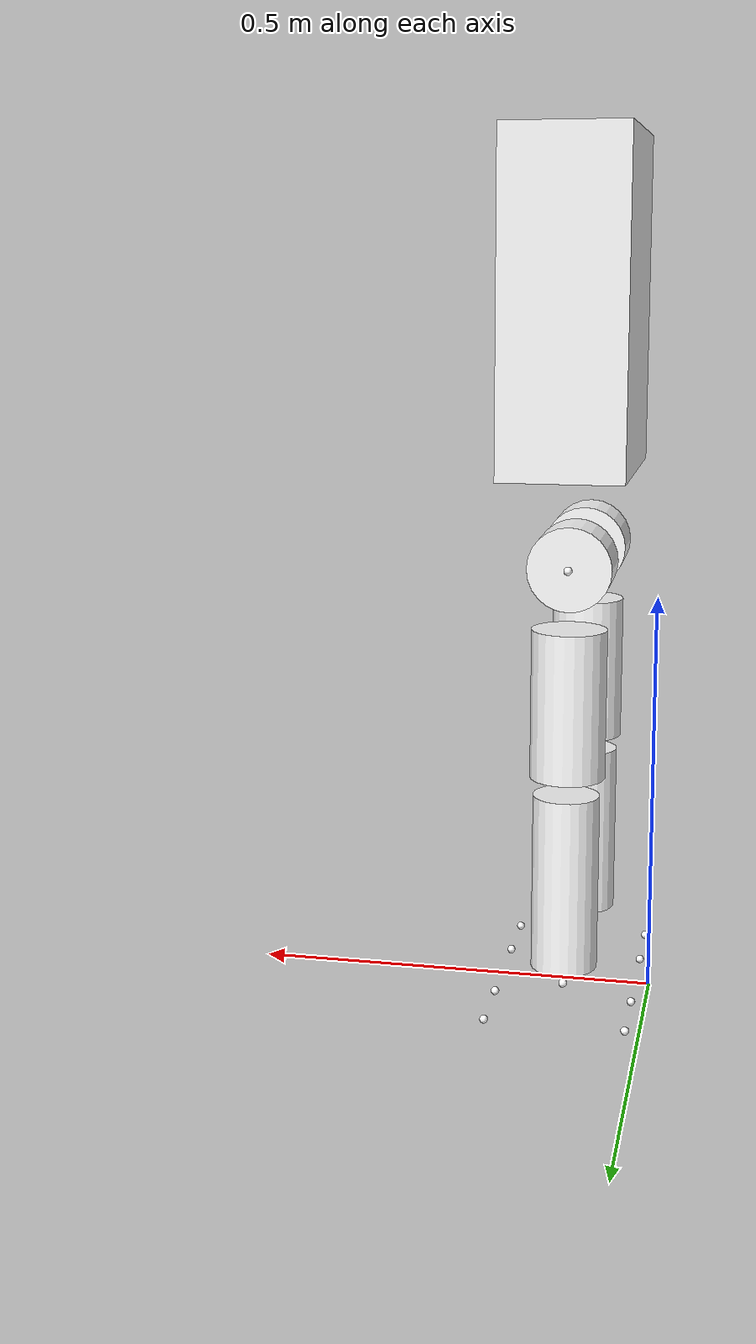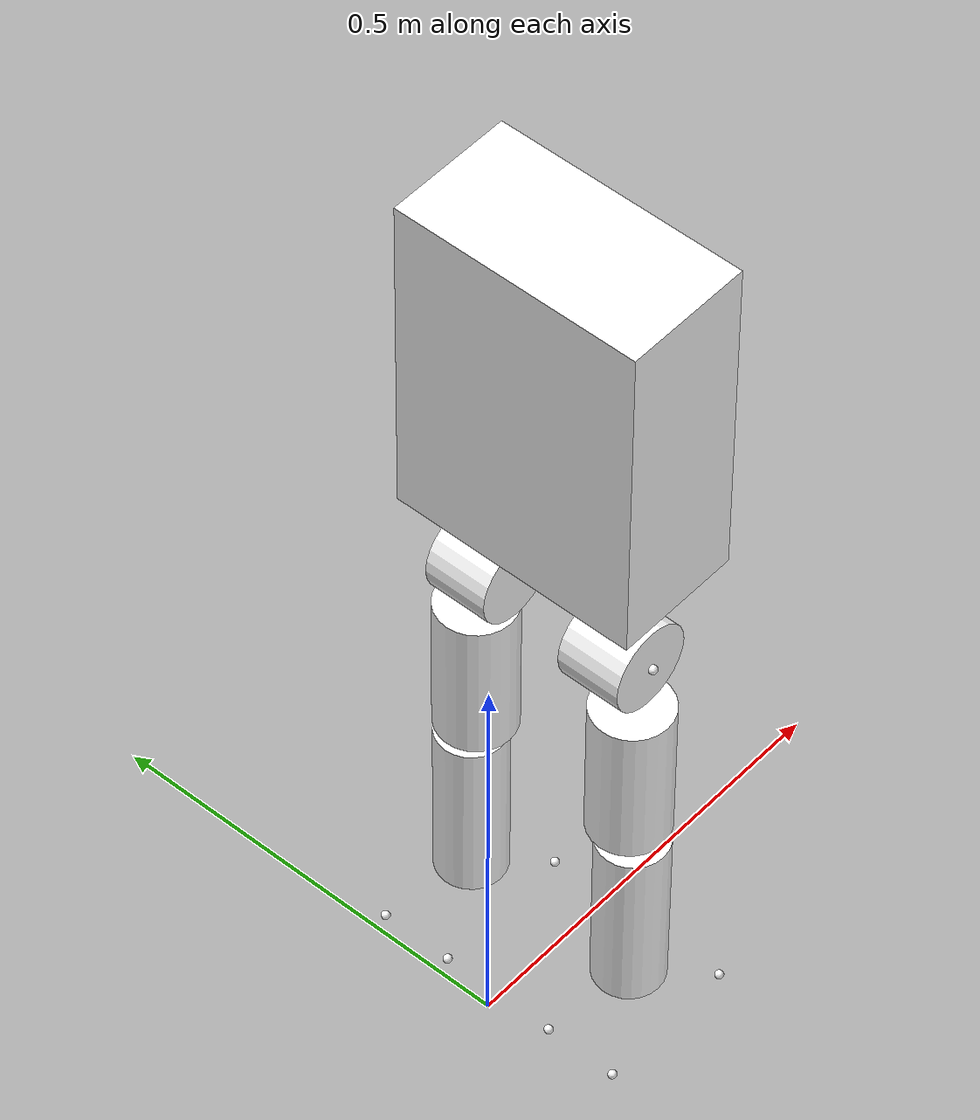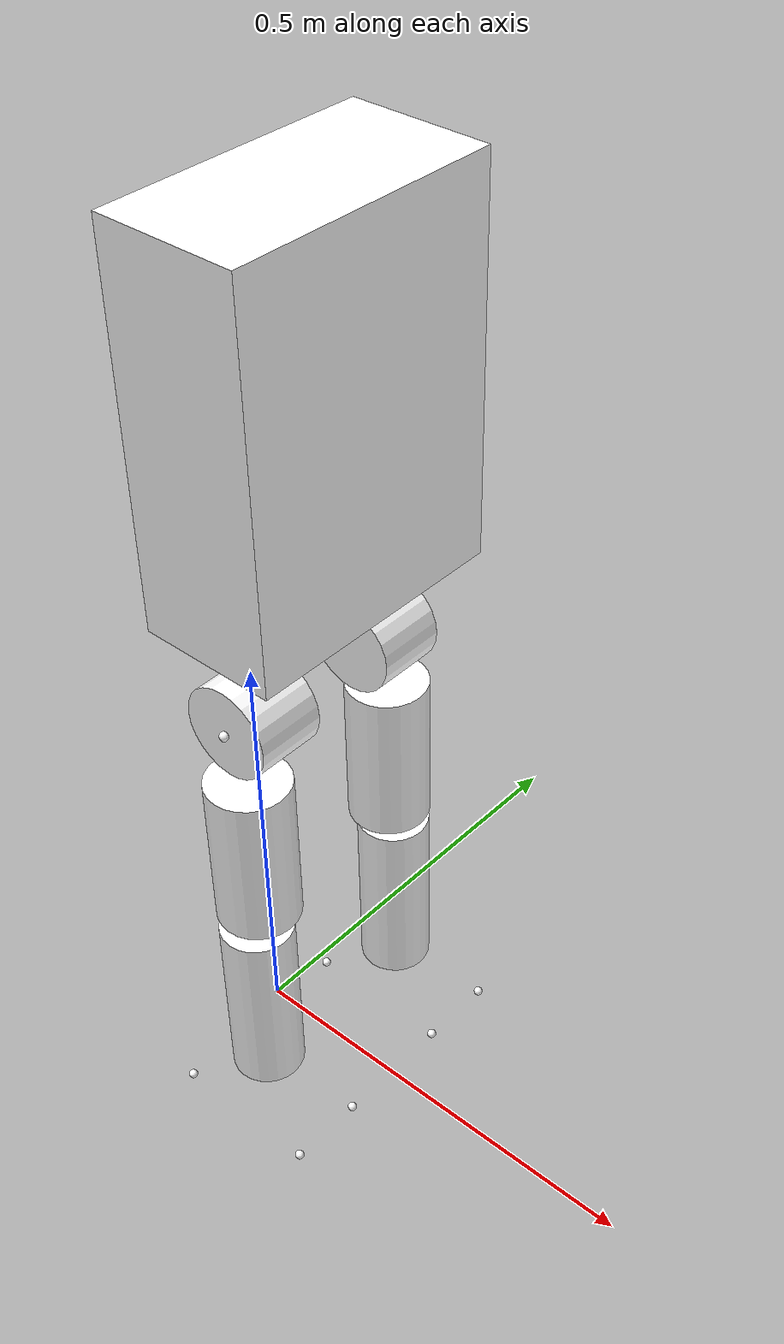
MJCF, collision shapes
<mujoco model="p1">
  <compiler angle="radian" meshdir="assets" autolimits="true"/>

  <default>
    <default class="p1">
      <default class="visual">
        <geom type="mesh" density="0" material="white" contype="0" conaffinity="0" group="2"/>
      </default>
      <default class="collision">
        <geom priority="1" condim="1" rgba="1 1 1 1" group="3"/>
        <default class="foot_collision">
          <geom type="sphere" size="0.005" priority="1" condim="3"/>
        </default>
      </default>
      <site rgba="1 1 1 1" group="5"/>
    </default>
  </default>

  <asset>
    <material name="white" rgba="1 1 1 1"/>
    <mesh name="pelvis_link" file="pelvis_link.STL"/>
    <mesh name="hip_roll_l_link" file="hip_roll_l_link.STL"/>
    <mesh name="hip_pitch_l_link" file="hip_pitch_l_link.STL"/>
    <mesh name="hip_yaw_l_link" file="hip_yaw_l_link.STL"/>
    <mesh name="knee_pitch_l_link" file="knee_pitch_l_link.STL"/>
    <mesh name="ankle_pitch_l_link" file="ankle_pitch_l_link.STL"/>
    <mesh name="ankle_roll_l_link" file="ankle_roll_l_link.STL"/>
    <mesh name="hip_roll_r_link" file="hip_roll_r_link.STL"/>
    <mesh name="hip_pitch_r_link" file="hip_pitch_r_link.STL"/>
    <mesh name="hip_yaw_r_link" file="hip_yaw_r_link.STL"/>
    <mesh name="knee_pitch_r_link" file="knee_pitch_r_link.STL"/>
    <mesh name="ankle_pitch_r_link" file="ankle_pitch_r_link.STL"/>
    <mesh name="ankle_roll_r_link" file="ankle_roll_r_link.STL"/>
  </asset>

  <worldbody>
    <body name="pelvis_link" pos="0 0 0.65454" childclass="p1">
      <light pos="0 0 2" mode="trackcom"/>
      <camera name="tracking" pos="1.5 -1.5 0.6" xyaxes="0.707 0.707 0 -0.276 0.276 0.921" mode="trackcom"/>
      <freejoint name="floating_base_joint"/>
      <inertial pos="0.08578338 0.00244448 0.08884186" mass="15.22825973"
        fullinertia="0.35831058 0.29113656 0.13960516 -0.00120621 -0.0601778 -0.01413169"/>
      <geom class="visual" mesh="pelvis_link"/>
      <geom name="pelvis_collision" class="collision" type="box"
        size="0.075 0.145 0.2" pos="0.105 0 0.2"/>
      <site name="imu_in_pelvis" type="box" size="0.01 0.01 0.005" pos="0 0 0"/>

      <body name="hip_roll_l_link" pos="0.03002 0.09 -0.0648"
        quat="0.9659258 0 0.258819 0">
        <inertial pos="0.06875776 0.02075955 0.00008271" mass="1.84357373"
          fullinertia="0.00057268 0.00139778 0.00123139 -0.00014980 -0.00000196 0.00000037"/>
        <joint name="hip_roll_l_joint" axis="1 0 0" range="-0.6 0.6"/>
        <geom class="visual" mesh="hip_roll_l_link"/>
        <geom name="hip_roll_l_collision" class="collision" type="cylinder"
          size="0.05 0.0375" pos="0.075 -0.005 0" quat="0.7071068 0.7071068 0 0"/>

        <body name="hip_pitch_l_link" pos="0.076 0.035 0"
          quat="0.9659258 0 -0.258819 0">
          <inertial pos="0 -0.00443165 -0.03247590" mass="0.30277611"
            fullinertia="0.00040026 0.00037069 0.00020693 0 0 -0.00011064"/>
          <joint name="hip_pitch_l_joint" axis="0 1 0" range="-1.0 0.5"/>
          <geom class="visual" mesh="hip_pitch_l_link"/>
          <geom name="hip_pitch_l_collision" class="collision" type="sphere" size="0.005"/>

          <body name="hip_yaw_l_link" pos="0 -0.024 -0.063">
            <inertial pos="-0.00004624 0.00328905 -0.08825309" mass="2.43873932"
              fullinertia="0.00875946 0.00881621 0.00272891 0.00000599 -0.00000620 0.00042315"/>
            <joint name="hip_yaw_l_joint" axis="0 0 1" range="-0.5 0.5"/>
            <geom class="visual" mesh="hip_yaw_l_link"/>
            <geom name="hip_yaw_l_collision" class="collision" type="cylinder"
              size="0.045 0.09" pos="0 0 -0.1"/>

            <body name="knee_pitch_l_link" pos="0 -0.019 -0.143">
              <inertial pos="-0.00095980 0.02645615 -0.14467802" mass="1.60133571"
                fullinertia="0.00873696 0.00918928 0.00166316 -0.00003028 -0.00089958 0.00076163"/>
              <joint name="knee_pitch_l_joint" axis="0 1 0" range="0 1.8"/>
              <geom class="visual" mesh="knee_pitch_l_link"/>
              <geom name="knee_pitch_l_collision" class="collision" type="cylinder"
                size="0.04 0.1075" pos="0 0.025 -0.175"/>

              <body name="ankle_pitch_l_link" pos="0 0.0301 -0.30494">
                <inertial pos="0 0 0" mass="0.07771556"
                  fullinertia="0.00000946 0.00000637 0.0000138 0 0 0"/>
                <joint name="ankle_pitch_l_joint" axis="0 1 0" range="-0.6 0.4"/>
                <geom class="visual" mesh="ankle_pitch_l_link"/>
                <geom name="ankle_pitch_l_collision" class="collision"
                  type="sphere" size="0.005"/>

                <body name="ankle_roll_l_link" pos="-0.015 0 0">
                  <inertial pos="0.01881405 0.00000220 -0.02511955" mass="0.62856577"
                    fullinertia="0.00065175 0.00173476 0.00225362 -0.00000008 0.00000714 0"/>
                  <joint name="ankle_roll_l_joint" axis="1 0 0" range="-0.2 0.2"/>
                  <geom class="visual" mesh="ankle_roll_l_link"/>
                  <site name="left_foot" size="0.01" pos="0.02 0 -0.0408"/>
                  <geom name="left_foot1_collision" class="foot_collision" pos="-0.065 0.043 -0.0358"/>
                  <geom name="left_foot2_collision" class="foot_collision" pos="-0.065 -0.043 -0.0358"/>
                  <geom name="left_foot3_collision" class="foot_collision" pos="0.105 0.043 -0.0358"/>
                  <geom name="left_foot4_collision" class="foot_collision" pos="0.105 -0.043 -0.0358"/>
                </body>
              </body>
            </body>
          </body>
        </body>
      </body>

      <body name="hip_roll_r_link" pos="0.0302 -0.09 -0.0648"
        quat="0.9659258 0 0.258819 0">
        <inertial pos="0.0603906 -0.02075955 0.00008270" mass="1.84357373"
          fullinertia="0.00057268 0.00134505 0.00117867 0.00015166 -0.00000051 -0.00000037"/>
        <joint name="hip_roll_r_joint" axis="1 0 0" range="-0.6 0.6"/>
        <geom class="visual" mesh="hip_roll_r_link"/>
        <geom name="hip_roll_r_collision" class="collision" type="cylinder"
          size="0.05 0.0375" pos="0.075 0.005 0" quat="0.7071068 0.7071068 0 0"/>

        <body name="hip_pitch_r_link" pos="0.076 -0.035 0"
          quat="0.9659258 0 -0.258819 0">
          <inertial pos="0 0.00443165 -0.03247590" mass="0.30277611"
            fullinertia="0.00040026 0.00037069 0.00020693 0 0 0.00011064"/>
          <joint name="hip_pitch_r_joint" axis="0 1 0" range="-1.0 0.5"/>
          <geom class="visual" mesh="hip_pitch_r_link"/>
          <geom name="hip_pitch_r_collision" class="collision" type="sphere" size="0.005"/>

          <body name="hip_yaw_r_link" pos="0 0.024 -0.063">
            <inertial pos="0 -0.00315274 -0.08823981" mass="2.43873932"
              fullinertia="0.00875833 0.00881266 0.00273078 0.00000230 -0.00000065 -0.00042669"/>
            <joint name="hip_yaw_r_joint" axis="0 0 1" range="-0.5 0.5"/>
            <geom class="visual" mesh="hip_yaw_r_link"/>
            <geom name="hip_yaw_r_collision" class="collision" type="cylinder"
              size="0.045 0.09" pos="0 0 -0.1"/>

            <body name="knee_pitch_r_link" pos="0 0.019 -0.143">
              <inertial pos="-0.00034327 -0.02631946 -0.14424172" mass="1.55804965"
                fullinertia="0.00871498 0.00915180 0.00163258 -0.00002312 -0.00087521 -0.00068644"/>
              <joint name="knee_pitch_r_joint" axis="0 1 0" range="0 1.8"/>
              <geom class="visual" mesh="knee_pitch_r_link"/>
              <geom name="knee_pitch_r_collision" class="collision" type="cylinder"
                size="0.04 0.1075" pos="0 -0.025 -0.175"/>

              <body name="ankle_pitch_r_link" pos="0 -0.0301 -0.30494">
                <inertial pos="0 0 0" mass="0.07771556"
                  fullinertia="0.00000946 0.00000637 0.0000138 0 0 0"/>
                <joint name="ankle_pitch_r_joint" axis="0 1 0" range="-0.6 0.4"/>
                <geom class="visual" mesh="ankle_pitch_r_link"/>
                <geom name="ankle_pitch_r_collision" class="collision"
                  type="sphere" size="0.005"/>

                <body name="ankle_roll_r_link" pos="-0.015 0 0">
                  <inertial pos="0.01881405 0.00000220 -0.02511955" mass="0.62856577"
                    fullinertia="0.00065175 0.00173476 0.00225362 -0.00000008 0.00000714 0"/>
                  <joint name="ankle_roll_r_joint" axis="1 0 0" range="-0.2 0.2"/>
                  <geom class="visual" mesh="ankle_roll_r_link"/>
                  <site name="right_foot" size="0.01" pos="0.02 0 -0.0408"/>
                  <geom name="right_foot1_collision" class="foot_collision" pos="-0.065 0.043 -0.0358"/>
                  <geom name="right_foot2_collision" class="foot_collision" pos="-0.065 -0.043 -0.0358"/>
                  <geom name="right_foot3_collision" class="foot_collision" pos="0.105 0.043 -0.0358"/>
                  <geom name="right_foot4_collision" class="foot_collision" pos="0.105 -0.043 -0.0358"/>
                </body>
              </body>
            </body>
          </body>
        </body>
      </body>
    </body>
  </worldbody>

  <contact>
    <exclude body1="pelvis_link" body2="hip_roll_l_link"/>
    <exclude body1="pelvis_link" body2="hip_roll_r_link"/>
  </contact>

  <sensor>
    <gyro name="imu_ang_vel" site="imu_in_pelvis"/>
    <velocimeter name="imu_lin_vel" site="imu_in_pelvis"/>
    <accelerometer name="imu_lin_acc" site="imu_in_pelvis"/>
    <subtreeangmom name="root_angmom" body="pelvis_link"/>
  </sensor>
</mujoco>
